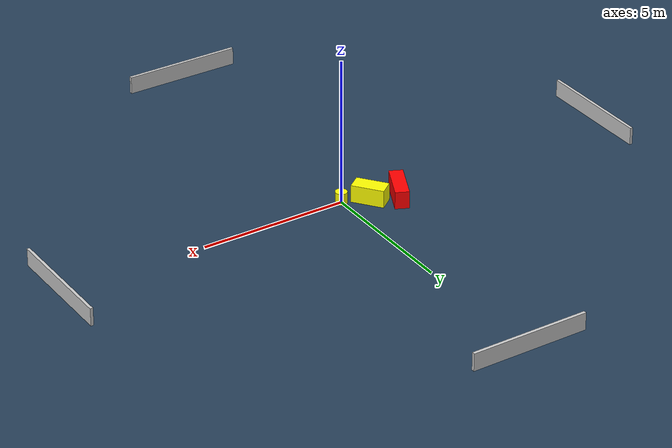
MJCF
<?xml version="1.0" ?>
<mujoco model="generated_environment">
  <option timestep="0.01" integrator="RK4" cone="elliptic"/>
  <default>
    <geom density="1"/>
  </default>
  <asset>
    <texture builtin="gradient" height="3072" name="skybox" rgb1="0.3 0.5 0.7" rgb2="0 0 0" type="skybox" width="512"/>
    <texture builtin="checker" height="300" name="groundplane" rgb1="0.2 0.3 0.4" rgb2="0.1 0.2 0.3" type="2d" width="300"/>
    <material name="groundplane" reflectance="0.2" texrepeat="5 5" texture="groundplane"/>
  </asset>
  <worldbody>
    <light dir="0 0 -1" directional="true" pos="0 0 1.5"/>
    <geom condim="3" friction="0.5 0.005 0.001" material="groundplane" name="floor" pos="0 0 0" size="0 0 0.05" type="plane"/>
    <body name="walls">
      <geom name="wall_1" condim="4" pos="-10.0 0.0 0.3" rgba="0.800000011920929 0.800000011920929 0.800000011920929 1.0" size="0.05 2.0 0.3" type="box"/>
      <geom name="wall_2" condim="4" pos="10.0 0.0 0.3" rgba="0.800000011920929 0.800000011920929 0.800000011920929 1.0" size="0.05 2.0 0.3" type="box"/>
      <geom name="wall_3" condim="4" pos="0.0 -10.0 0.3" rgba="0.800000011920929 0.800000011920929 0.800000011920929 1.0" size="2.0 0.05 0.3" type="box"/>
      <geom name="wall_4" condim="4" pos="0.0 10.0 0.3" rgba="0.800000011920929 0.800000011920929 0.800000011920929 1.0" size="2.0 0.05 0.3" type="box"/>
    </body>
    <body name="robot">
      <joint name="joint_x" type="slide" pos="0 0 0" axis="1 0 0"/>
      <joint name="joint_y" type="slide" pos="0 0 0" axis="0 1 0"/>
      <geom name="robot" type="cylinder" pos="0.0 0.0 0.2" size="0.2 0.2 0.0" mass="5.0" friction="1.0 0.005 0.0001" condim="4" rgba="1.0 1.0 0.0 1.0"/>
    </body>
    <body name="obstacle_1_movable">
      <geom name="obstacle_1_movable" condim="4" pos="-0.8204819570037706 0.40947982892822254 0.3" euler="0 0 217.222221123949" friction="0.0 0.005 0.001" rgba="1.0 1.0 0.0 1.0" size="0.27545831886017563 0.5490379706564326 0.3" type="box" mass="0.1"/>
      <joint type="free"/>
    </body>
    <body name="obstacle_2_static">
      <geom name="obstacle_2_static" condim="4" pos="-1.6962473377529472 0.7331749758662717 0.3" euler="0 0 64.56572901989756" friction="0.0 0.005 0.001" rgba="1.0 0.0 0.0 1.0" size="0.6968482261006393 0.23218992134450914 0.3" type="box"/>
    </body>
  </worldbody>
  <actuator>
    <motor name="actuator_x" joint="joint_x" gear="1" ctrlrange="-1 1"/>
    <motor name="actuator_y" joint="joint_y" gear="1" ctrlrange="-1 1"/>
  </actuator>
</mujoco>
